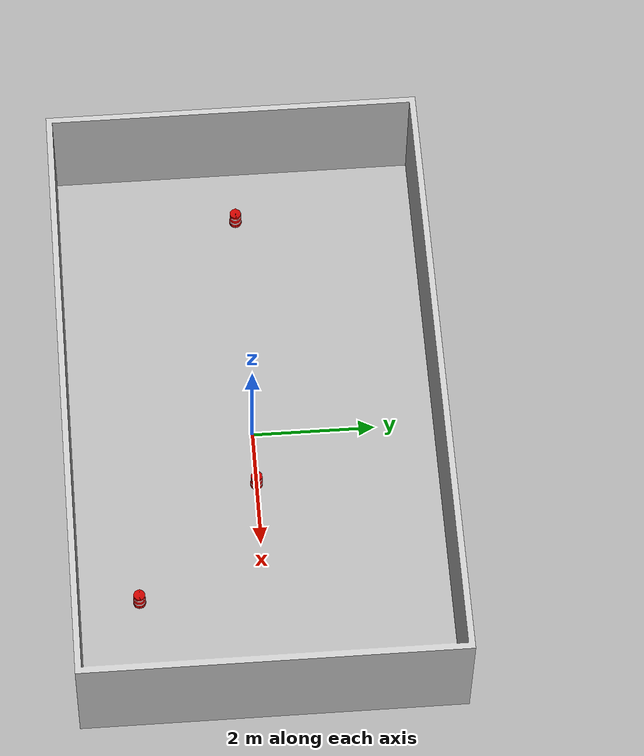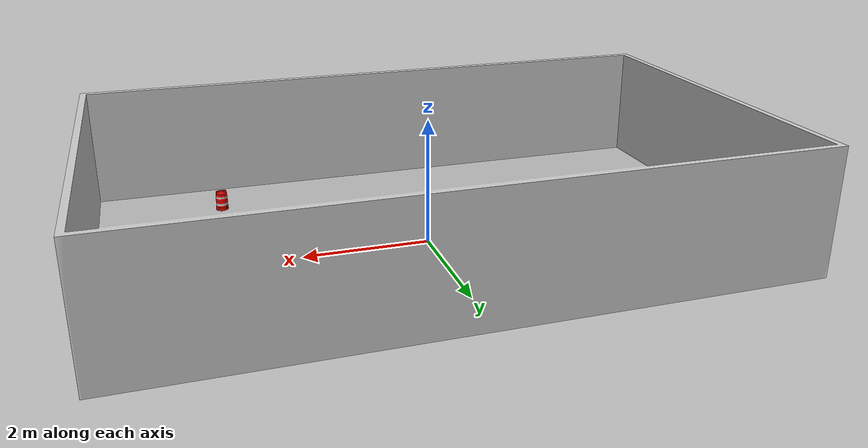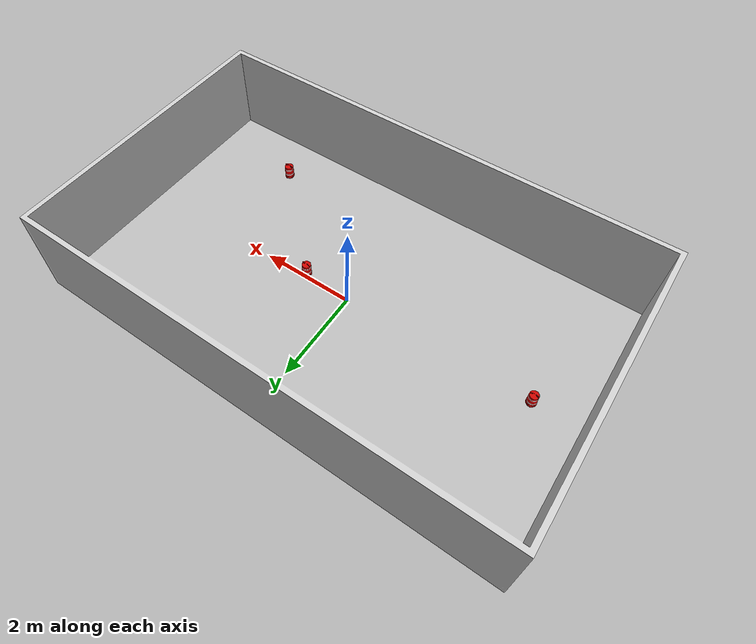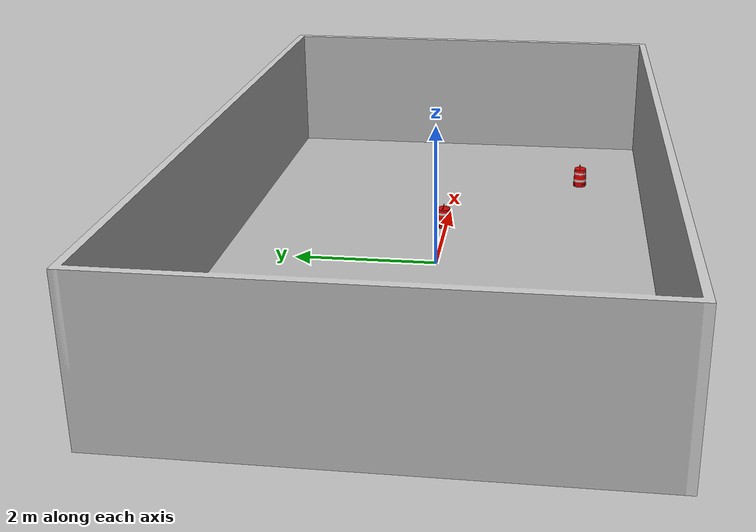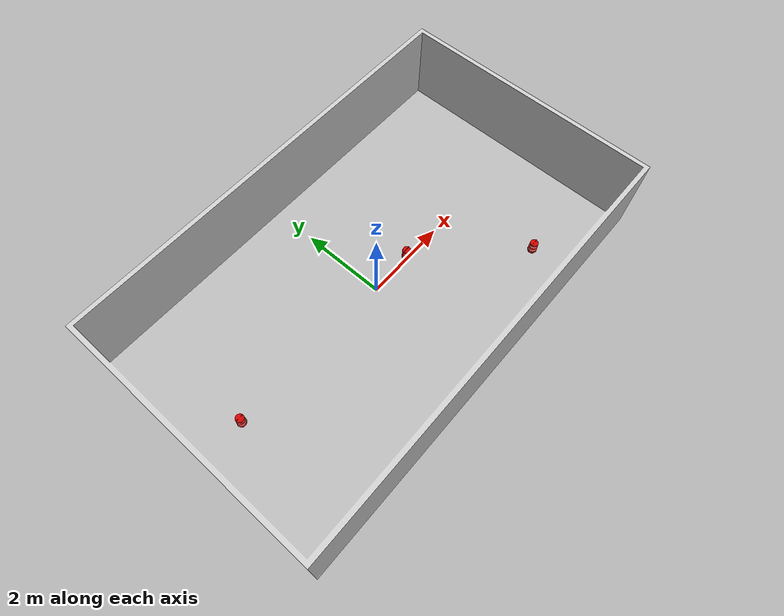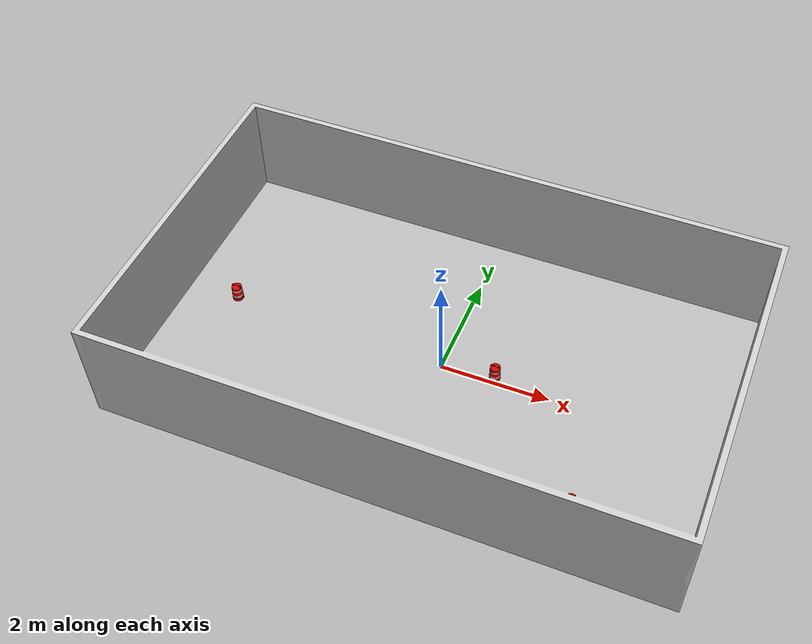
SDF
<sdf version="1.6">
  <world name="nics_world">
    <light name='sun' type='directional'>
      <cast_shadows>0</cast_shadows>
      <pose frame=''>0 0 10 0 -0 0</pose>
      <diffuse>0.8 0.8 0.8 1</diffuse>
      <specular>0.2 0.2 0.2 1</specular>
      <attenuation>
        <range>1000</range>
        <constant>0.9</constant>
        <linear>0.01</linear>
        <quadratic>0.001</quadratic>
      </attenuation>
      <direction>-0.5 0.1 -0.9</direction>
    </light>

    <model name="nics_scene">
      <pose>0 0 0.1 0 0 0</pose>
      <static>true</static>
      <link name="nics_scene">
        <visual name="visual">
          <geometry>
            <mesh>
              <uri>file://nics_world.dae</uri>
              <scale>0.5 0.5 0.5</scale>
            </mesh>
          </geometry>
        </visual>
        <self_collide>0</self_collide>
        <enable_wind>0</enable_wind>
        <kinematic>0</kinematic>
        <collision name='collision'>
          <laser_retro>1</laser_retro>
          <max_contacts>10</max_contacts>
          <pose frame=''>0 0 0 0 -0 0</pose>
          <geometry>
            <mesh>
              <uri>file://nics_world.dae</uri>
              <scale>0.5 0.5 0.5</scale>
            </mesh>
          </geometry>
        </collision>
      </link>
    </model>

    <model name='nics_fence'>
      <link name='link_fence'>
        <pose frame=''>0 0 0 0 -0 0</pose>
        <collision name='collision'>
          <laser_retro>1</laser_retro>
          <max_contacts>10</max_contacts>
          <pose frame=''>0 0 0 0 -0 0</pose>
          <geometry>
            <mesh>
              <uri>file://nics_fence.stl</uri>
              <scale>0.5 0.5 0.5</scale>
            </mesh>
          </geometry>
        </collision>
        <self_collide>0</self_collide>
        <enable_wind>0</enable_wind>
        <kinematic>0</kinematic>
      </link>
      <static>1</static>
      <allow_auto_disable>1</allow_auto_disable>
      <pose frame=''>0 0 0.1 0 -0 0</pose>
    </model>

    <model name="nics_cone">
      <pose>1 0 0.1 0 0 0</pose>
      <static>true</static>
      <link name="nics_cone">
        <visual name="visual">
          <geometry>
            <mesh>
              <uri>file://nics_cone.dae</uri>
              <scale>0.1 0.1 0.1</scale>
            </mesh>
          </geometry>
        </visual>
        <self_collide>0</self_collide>
        <enable_wind>0</enable_wind>
        <kinematic>0</kinematic>
        <collision name='collision'>
          <laser_retro>1</laser_retro>
          <max_contacts>10</max_contacts>
          <pose frame=''>0 0 0 0 -0 0</pose>
          <geometry>
            <mesh>
              <uri>file://nics_cone.dae</uri>
              <scale>0.1 0.1 0.1</scale>
            </mesh>
          </geometry>
        </collision>
      </link>
    </model>

    <model name="nics_cone2">
      <pose>3 -2 0.1 0 0 0</pose>
      <static>true</static>
      <link name="nics_cone2">
        <visual name="visual">
          <geometry>
            <mesh>
              <uri>file://nics_cone.dae</uri>
              <scale>0.1 0.1 0.1</scale>
            </mesh>
          </geometry>
        </visual>
        <self_collide>0</self_collide>
        <enable_wind>0</enable_wind>
        <kinematic>0</kinematic>
        <collision name='collision'>
          <laser_retro>1</laser_retro>
          <max_contacts>10</max_contacts>
          <pose frame=''>0 0 0 0 -0 0</pose>
          <geometry>
            <mesh>
              <uri>file://nics_cone.dae</uri>
              <scale>0.1 0.1 0.1</scale>
            </mesh>
          </geometry>
        </collision>
      </link>
    </model>

    <model name="nics_cone3">
      <pose>-4 0 0.1 0 0 0</pose>
      <static>true</static>
      <link name="nics_cone3">
        <visual name="visual">
          <geometry>
            <mesh>
              <uri>file://nics_cone.dae</uri>
              <scale>0.1 0.1 0.1</scale>
            </mesh>
          </geometry>
        </visual>
        <self_collide>0</self_collide>
        <enable_wind>0</enable_wind>
        <kinematic>0</kinematic>
        <collision name='collision'>
          <laser_retro>1</laser_retro>
          <max_contacts>10</max_contacts>
          <pose frame=''>0 0 0 0 -0 0</pose>
          <geometry>
            <mesh>
              <uri>file://nics_cone.dae</uri>
              <scale>0.1 0.1 0.1</scale>
            </mesh>
          </geometry>
        </collision>
      </link>
    </model>

    <light name='user_directional_light_0' type='directional'>
      <pose frame=''>0 0 10 0 -0 0</pose>
      <diffuse>1 1 1 1</diffuse>
      <specular>1 1 1 1</specular>
      <direction>0.1 0.1 -0.9</direction>
      <attenuation>
        <range>20</range>
        <constant>0.5</constant>
        <linear>0.01</linear>
        <quadratic>0.001</quadratic>
      </attenuation>
      <cast_shadows>0</cast_shadows>
    </light>
    <light name='user_directional_light_1' type='directional'>
      <pose frame=''>0 10 0 -1.57 0 0</pose>
      <diffuse>1 1 1 1</diffuse>
      <specular>1 1 1 1</specular>
      <direction>0.1 0.1 -0.9</direction>
      <attenuation>
        <range>20</range>
        <constant>0.5</constant>
        <linear>0.01</linear>
        <quadratic>0.001</quadratic>
      </attenuation>
      <cast_shadows>0</cast_shadows>
    </light>
    <light name='user_directional_light_2' type='directional'>
      <pose frame=''>15 0 0 0 1.57 0</pose>
      <diffuse>1 1 1 1</diffuse>
      <specular>1 1 1 1</specular>
      <direction>0.1 0.1 -0.9</direction>
      <attenuation>
        <range>20</range>
        <constant>0.5</constant>
        <linear>0.01</linear>
        <quadratic>0.001</quadratic>
      </attenuation>
      <cast_shadows>0</cast_shadows>
    </light>
    <light name='user_directional_light_3' type='directional'>
      <pose frame=''>-15 0 0 0 -1.57 0</pose>
      <diffuse>1 1 1 1</diffuse>
      <specular>1 1 1 1</specular>
      <direction>0.1 0.1 -0.9</direction>
      <attenuation>
        <range>20</range>
        <constant>0.5</constant>
        <linear>0.01</linear>
        <quadratic>0.001</quadratic>
      </attenuation>
      <cast_shadows>0</cast_shadows>
    </light>
    <light name='user_directional_light_4' type='directional'>
      <pose frame=''>0 -10 0 1.57 -0 0</pose>
      <diffuse>1 1 1 1</diffuse>
      <specular>1 1 1 1</specular>
      <direction>0.1 0.1 -0.9</direction>
      <attenuation>
        <range>20</range>
        <constant>0.5</constant>
        <linear>0.01</linear>
        <quadratic>0.001</quadratic>
      </attenuation>
      <cast_shadows>0</cast_shadows>
    </light>
    <gui fullscreen='0'>
      <camera name='user_camera'>
         <pose frame=''>0.140472 -3.59244 12.6221 0 1.25964 1.56819</pose>
        <view_controller>orbit</view_controller>
        <projection_type>perspective</projection_type>
      </camera>
    </gui>
  </world>
</sdf>
